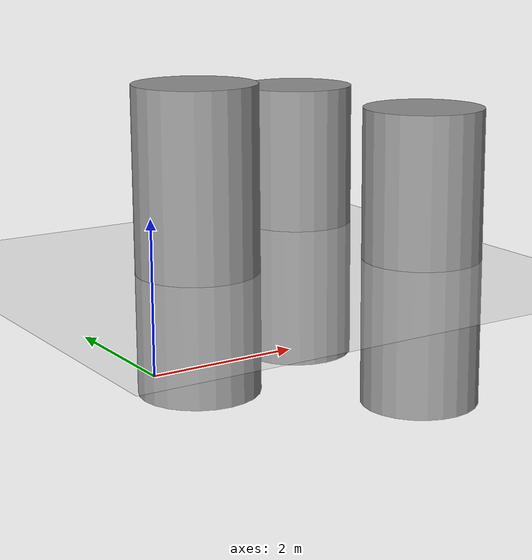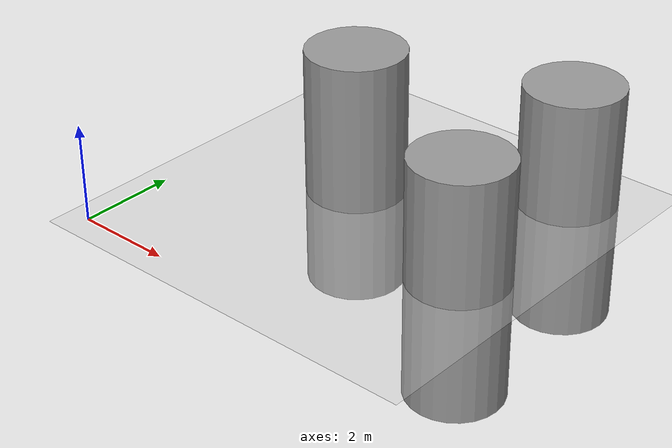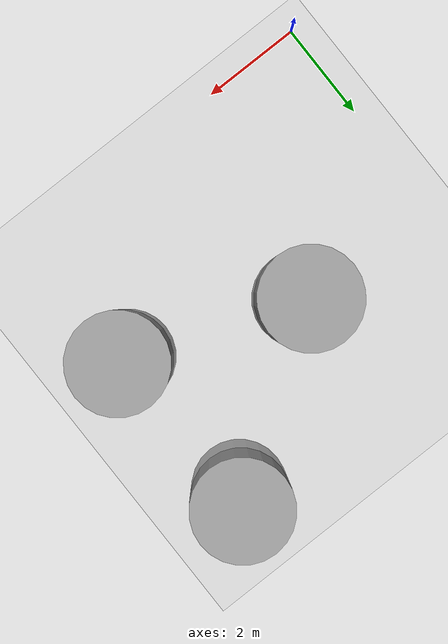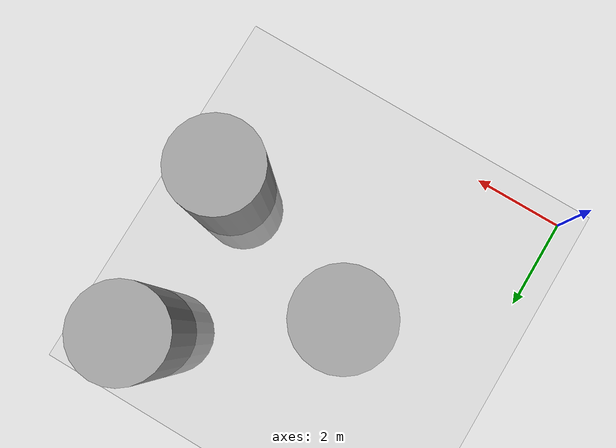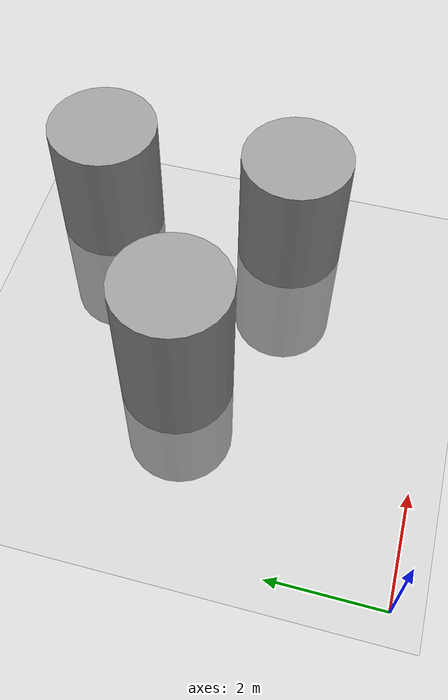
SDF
<sdf version="1.6">
 <world name="default">
  <plugin name="ned_conversions" filename="libned_conv.so"/>
  <model name="ground_plane">
   <static>1</static>
   <link name="link">
    <collision name="collision">
     <geometry><plane><normal>0 0 1</normal><size>100 100</size></plane></geometry>
     <surface>
      <contact><collide_bitmask>65535</collide_bitmask></contact>
      <friction><ode><mu>100</mu><mu2>50</mu2></ode></friction>
     </surface>
    </collision>
    <visual name="visual">
     <cast_shadows>0</cast_shadows>
     <geometry><plane><normal>0 0 1</normal><size>100 100</size></plane></geometry>
     <material>
      <script><uri>file://media/materials/scripts/gazebo.material</uri><name>Gazebo/Grey</name></script>
     </material>
    </visual>
   </link>
  </model>
  <light name="sun" type="directional">
   <pose>0 0 10 0 -0 0</pose>
   <diffuse>0.8 0.8 0.8 1</diffuse>
   <specular>0.2 0.2 0.2 1</specular>
   <attenuation>
    <range>1000</range>
    <constant>0.9</constant>
    <linear>0.01</linear>
    <quadratic>0.001</quadratic>
   </attenuation>
   <direction>-0.5 0.1 -0.9</direction>
  </light>
  <plugin name="ros_interface_plugin" filename="librotors_gazebo_ros_interface_plugin.so"/>
  <spherical_coordinates>
   <surface_model>EARTH_WGS84</surface_model>
   <latitude_deg>47.3667</latitude_deg>
   <longitude_deg>8.55</longitude_deg>
   <elevation>500</elevation>
   <heading_deg>0</heading_deg>
  </spherical_coordinates>
  <physics name="default_physics" default="0" type="ode">
   <ode>
    <solver>
     <type>quick</type>
     <iters>1000</iters>
     <sor>1.3</sor>
     <use_dynamic_moi_rescaling>0</use_dynamic_moi_rescaling>
    </solver>
    <constraints>
     <cfm>0</cfm>
     <erp>0.2</erp>
     <contact_max_correcting_vel>100</contact_max_correcting_vel>
     <contact_surface_layer>0.001</contact_surface_layer>
    </constraints>
   </ode>
   <max_step_size>0.001</max_step_size>
   <real_time_factor>1</real_time_factor>
   <real_time_update_rate>1000</real_time_update_rate>
  </physics>
  <gravity>1.47 0 -9.81</gravity>
  <magnetic_field>6e-06 2.3e-05 -4.2e-05</magnetic_field>
  <atmosphere type="adiabatic"/>
  <scene><ambient>0.4 0.4 0.4 1</ambient><background>0.7 0.7 0.7 1</background><shadows>1</shadows></scene>
  <audio><device>default</device></audio>
  <wind><linear_velocity>0 0 0</linear_velocity></wind>
  <model name="column">
   <link name="link">
    <inertial>
     <mass>1570.8</mass>
     <inertia><ixx>229.074</ixx><ixy>0</ixy><ixz>0</ixz><iyy>229.074</iyy><iyz>0</iyz><izz>196.35</izz></inertia>
    </inertial>
    <visual name="visual">
     <geometry><cylinder><radius>1</radius><length>5</length></cylinder></geometry>
     <material>
      <script><name>Gazebo/Grey</name><uri>file://media/materials/scripts/gazebo.material</uri></script>
      <shader type="vertex"><normal_map>__default__</normal_map></shader>
      <ambient>0.3 0.3 0.3 1</ambient>
      <diffuse>0.7 0.7 0.7 1</diffuse>
      <specular>0.01 0.01 0.01 1</specular>
      <emissive>0 0 0 1</emissive>
     </material>
    </visual>
    <collision name="collision">
     <geometry><cylinder><radius>1</radius><length>5</length></cylinder></geometry>
     <surface>
      <friction>
       <ode><mu>1</mu><mu2>1</mu2><fdir1>0 0 0</fdir1><slip1>0</slip1><slip2>0</slip2></ode>
       <torsional>
        <coefficient>1</coefficient>
        <patch_radius>0</patch_radius>
        <surface_radius>0</surface_radius>
        <use_patch_radius>1</use_patch_radius>
        <ode><slip>0</slip></ode>
       </torsional>
      </friction>
      <bounce><restitution_coefficient>0</restitution_coefficient><threshold>1e+06</threshold></bounce>
      <contact>
       <collide_without_contact>0</collide_without_contact>
       <collide_without_contact_bitmask>1</collide_without_contact_bitmask>
       <collide_bitmask>1</collide_bitmask>
       <ode>
        <soft_cfm>0</soft_cfm>
        <soft_erp>0.2</soft_erp>
        <kp>1e+13</kp>
        <kd>1</kd>
        <max_vel>0.01</max_vel>
        <min_depth>0</min_depth>
       </ode>
       <bullet>
        <split_impulse>1</split_impulse>
        <split_impulse_penetration_threshold>-0.01</split_impulse_penetration_threshold>
        <soft_cfm>0</soft_cfm>
        <soft_erp>0.2</soft_erp>
        <kp>1e+13</kp>
        <kd>1</kd>
       </bullet>
      </contact>
     </surface>
    </collision>
   </link>
   <static>0</static>
   <pose>3.04873 4.2709 0.5 0 -0 0</pose>
  </model>
  <model name="column_clone">
   <link name="link">
    <inertial>
     <mass>1570.8</mass>
     <inertia><ixx>229.074</ixx><ixy>0</ixy><ixz>0</ixz><iyy>229.074</iyy><iyz>0</iyz><izz>196.35</izz></inertia>
    </inertial>
    <visual name="visual">
     <geometry><cylinder><radius>1</radius><length>5</length></cylinder></geometry>
     <material>
      <script><name>Gazebo/Grey</name><uri>file://media/materials/scripts/gazebo.material</uri></script>
      <shader type="vertex"><normal_map>__default__</normal_map></shader>
      <ambient>0.3 0.3 0.3 1</ambient>
      <diffuse>0.7 0.7 0.7 1</diffuse>
      <specular>0.01 0.01 0.01 1</specular>
      <emissive>0 0 0 1</emissive>
     </material>
    </visual>
    <collision name="collision">
     <geometry><cylinder><radius>1</radius><length>5</length></cylinder></geometry>
     <surface>
      <friction>
       <ode><mu>1</mu><mu2>1</mu2><fdir1>0 0 0</fdir1><slip1>0</slip1><slip2>0</slip2></ode>
       <torsional>
        <coefficient>1</coefficient>
        <patch_radius>0</patch_radius>
        <surface_radius>0</surface_radius>
        <use_patch_radius>1</use_patch_radius>
        <ode><slip>0</slip></ode>
       </torsional>
      </friction>
      <bounce><restitution_coefficient>0</restitution_coefficient><threshold>1e+06</threshold></bounce>
      <contact>
       <collide_without_contact>0</collide_without_contact>
       <collide_without_contact_bitmask>1</collide_without_contact_bitmask>
       <collide_bitmask>1</collide_bitmask>
       <ode>
        <soft_cfm>0</soft_cfm>
        <soft_erp>0.2</soft_erp>
        <kp>1e+13</kp>
        <kd>1</kd>
        <max_vel>0.01</max_vel>
        <min_depth>0</min_depth>
       </ode>
       <bullet>
        <split_impulse>1</split_impulse>
        <split_impulse_penetration_threshold>-0.01</split_impulse_penetration_threshold>
        <soft_cfm>0</soft_cfm>
        <soft_erp>0.2</soft_erp>
        <kp>1e+13</kp>
        <kd>1</kd>
       </bullet>
      </contact>
     </surface>
    </collision>
   </link>
   <static>0</static>
   <pose>6.57985 3.00845 0 0 -0 0</pose>
  </model>
  <model name="column_clone_0">
   <link name="link">
    <inertial>
     <mass>1570.8</mass>
     <inertia><ixx>229.074</ixx><ixy>0</ixy><ixz>0</ixz><iyy>229.074</iyy><iyz>0</iyz><izz>196.35</izz></inertia>
    </inertial>
    <visual name="visual">
     <geometry><cylinder><radius>1</radius><length>5</length></cylinder></geometry>
     <material>
      <script><name>Gazebo/Grey</name><uri>file://media/materials/scripts/gazebo.material</uri></script>
      <shader type="vertex"><normal_map>__default__</normal_map></shader>
      <ambient>0.3 0.3 0.3 1</ambient>
      <diffuse>0.7 0.7 0.7 1</diffuse>
      <specular>0.01 0.01 0.01 1</specular>
      <emissive>0 0 0 1</emissive>
     </material>
    </visual>
    <collision name="collision">
     <geometry><cylinder><radius>1</radius><length>5</length></cylinder></geometry>
     <surface>
      <friction>
       <ode><mu>1</mu><mu2>1</mu2><fdir1>0 0 0</fdir1><slip1>0</slip1><slip2>0</slip2></ode>
       <torsional>
        <coefficient>1</coefficient>
        <patch_radius>0</patch_radius>
        <surface_radius>0</surface_radius>
        <use_patch_radius>1</use_patch_radius>
        <ode><slip>0</slip></ode>
       </torsional>
      </friction>
      <bounce><restitution_coefficient>0</restitution_coefficient><threshold>1e+06</threshold></bounce>
      <contact>
       <collide_without_contact>0</collide_without_contact>
       <collide_without_contact_bitmask>1</collide_without_contact_bitmask>
       <collide_bitmask>1</collide_bitmask>
       <ode>
        <soft_cfm>0</soft_cfm>
        <soft_erp>0.2</soft_erp>
        <kp>1e+13</kp>
        <kd>1</kd>
        <max_vel>0.01</max_vel>
        <min_depth>0</min_depth>
       </ode>
       <bullet>
        <split_impulse>1</split_impulse>
        <split_impulse_penetration_threshold>-0.01</split_impulse_penetration_threshold>
        <soft_cfm>0</soft_cfm>
        <soft_erp>0.2</soft_erp>
        <kp>1e+13</kp>
        <kd>1</kd>
       </bullet>
      </contact>
     </surface>
    </collision>
   </link>
   <static>0</static>
   <pose>6.45167 6.57243 0 0 -0 0</pose>
  </model>
 </world>
</sdf>
